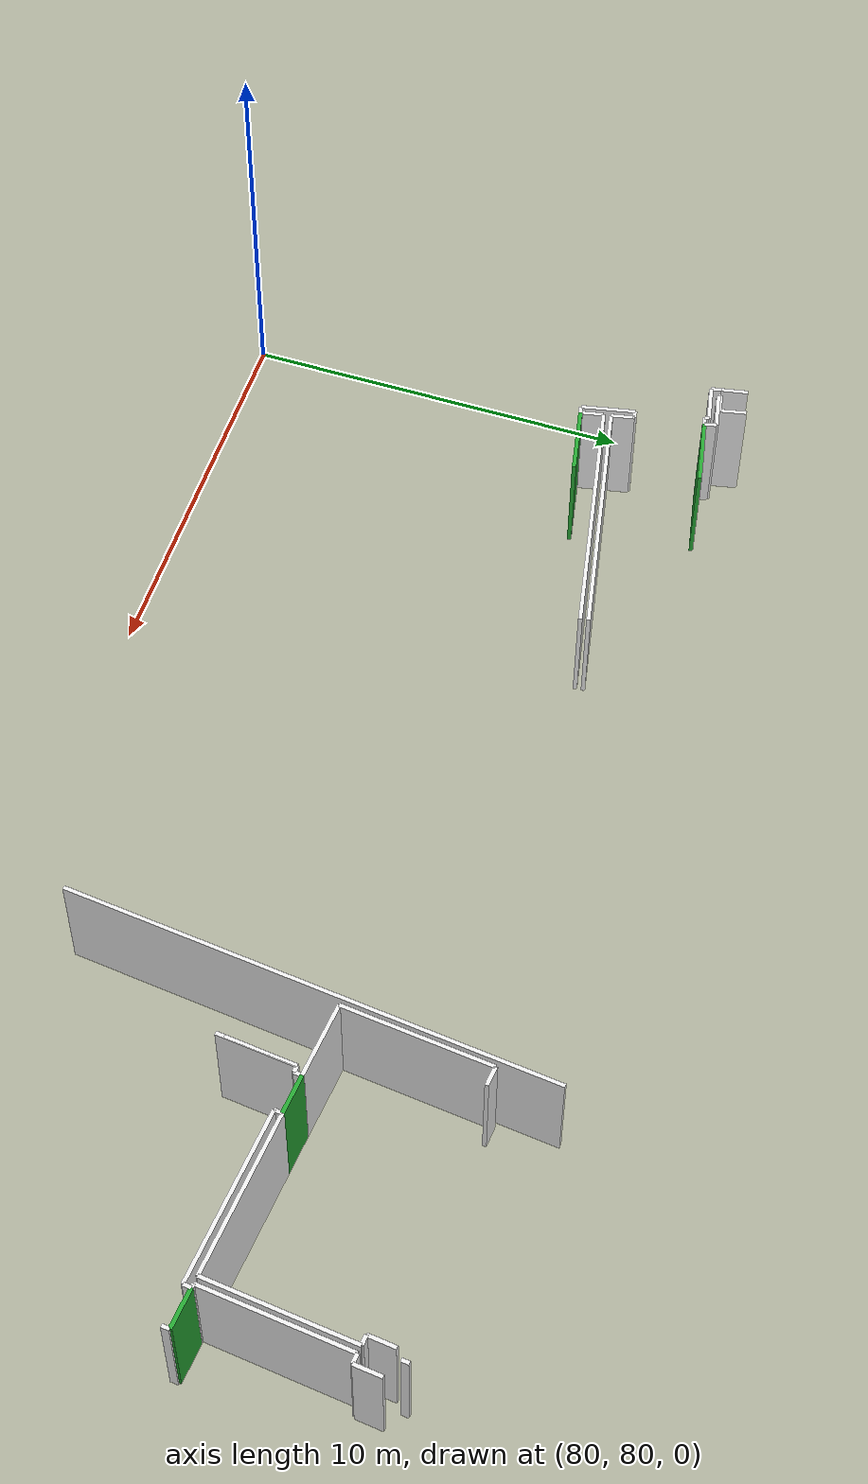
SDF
<sdf version="1.6">
 <world name="default">
  <model name="wall_102.4_88.9_1.5">
   <static>true</static>
   <pose>102.38000000000466 88.94000000017695 1.5 0 0 -0.09966865258337218</pose>
   <link name="link">
    <visual name="visual">
     <geometry><box><size>1.004987562121356 0.1 3</size></box></geometry>
     <material>
      <script><uri>file://media/materials/scripts/gazebo.material</uri><name>Gazebo/Green</name></script>
     </material>
    </visual>
    <collision name="collision"><geometry><box><size>1.004987562121356 0.1 3</size></box></geometry></collision>
   </link>
  </model>
  <model name="wall_107.8_88.4_1.5">
   <static>true</static>
   <pose>107.78999999997905 88.4000000001397 1.5 0 0 -0.09966865258337218</pose>
   <link name="link">
    <visual name="visual">
     <geometry><box><size>1.004987562121356 0.1 3</size></box></geometry>
     <material>
      <script><uri>file://media/materials/scripts/gazebo.material</uri><name>Gazebo/Green</name></script>
     </material>
    </visual>
    <collision name="collision"><geometry><box><size>1.004987562121356 0.1 3</size></box></geometry></collision>
   </link>
  </model>
  <model name="wall_82.0_92.7_1.5">
   <static>true</static>
   <pose>82.00000000011642 92.71500000008382 1.5 0 0 0.19630266413472733</pose>
   <link name="link">
    <visual name="visual">
     <geometry><box><size>1.7944637084425918 0.1 3</size></box></geometry>
     <material>
      <script><uri>file://media/materials/scripts/gazebo.material</uri><name>Gazebo/Green</name></script>
     </material>
    </visual>
    <collision name="collision"><geometry><box><size>1.7944637084425918 0.1 3</size></box></geometry></collision>
   </link>
  </model>
  <model name="wall_82.6_89.6_1.5">
   <static>true</static>
   <pose>82.625 89.59499999997206 1.5 0 0 0.195221650279591</pose>
   <link name="link">
    <visual name="visual">
     <geometry><box><size>1.804272706696837 0.1 3</size></box></geometry>
     <material>
      <script><uri>file://media/materials/scripts/gazebo.material</uri><name>Gazebo/Green</name></script>
     </material>
    </visual>
    <collision name="collision"><geometry><box><size>1.804272706696837 0.1 3</size></box></geometry></collision>
   </link>
  </model>
  <model name="wall_104.9_88.7_1.5">
   <static>true</static>
   <pose>104.94000000000233 88.68500000005588 1.5 0 0 -0.09918799887508435</pose>
   <link name="link">
    <visual name="visual">
     <geometry><box><size>4.1403502267421555 0.1 3</size></box></geometry>
     <material>
      <script><uri>file://media/materials/scripts/gazebo.material</uri><name>Gazebo/White</name></script>
     </material>
    </visual>
    <collision name="collision"><geometry><box><size>4.1403502267421555 0.1 3</size></box></geometry></collision>
   </link>
  </model>
  <model name="wall_107.2_90.4_1.5">
   <static>true</static>
   <pose>107.19000000000233 90.36499999999069 1.5 0 0 1.4703398593399408</pose>
   <link name="link">
    <visual name="visual">
     <geometry><box><size>3.78910279619648 0.1 3</size></box></geometry>
     <material>
      <script><uri>file://media/materials/scripts/gazebo.material</uri><name>Gazebo/White</name></script>
     </material>
    </visual>
    <collision name="collision"><geometry><box><size>3.78910279619648 0.1 3</size></box></geometry></collision>
   </link>
  </model>
  <model name="wall_107.3_92.3_1.5">
   <static>true</static>
   <pose>107.25500000000466 92.26000000000931 1.5 0 0 3.061762667803524</pose>
   <link name="link">
    <visual name="visual">
     <geometry><box><size>0.25079872408117443 0.1 3</size></box></geometry>
     <material>
      <script><uri>file://media/materials/scripts/gazebo.material</uri><name>Gazebo/White</name></script>
     </material>
    </visual>
    <collision name="collision"><geometry><box><size>0.25079872408117443 0.1 3</size></box></geometry></collision>
   </link>
  </model>
  <model name="wall_107.2_92.6_1.5">
   <static>true</static>
   <pose>107.16500000000815 92.62000000011176 1.5 0 0 1.4711276743202006</pose>
   <link name="link">
    <visual name="visual">
     <geometry><box><size>0.7034912936644975 0.1 3</size></box></geometry>
     <material>
      <script><uri>file://media/materials/scripts/gazebo.material</uri><name>Gazebo/White</name></script>
     </material>
    </visual>
    <collision name="collision"><geometry><box><size>0.7034912936644975 0.1 3</size></box></geometry></collision>
   </link>
  </model>
  <model name="wall_100.6_92.9_1.5">
   <static>true</static>
   <pose>100.59999999997672 92.93500000005588 1.5 0 0 3.0419240014674718</pose>
   <link name="link">
    <visual name="visual">
     <geometry><box><size>0.5024937810375105 0.1 3</size></box></geometry>
     <material>
      <script><uri>file://media/materials/scripts/gazebo.material</uri><name>Gazebo/White</name></script>
     </material>
    </visual>
    <collision name="collision"><geometry><box><size>0.5024937810375105 0.1 3</size></box></geometry></collision>
   </link>
  </model>
  <model name="wall_100.2_91.1_1.5">
   <static>true</static>
   <pose>100.15999999997439 91.07499999995343 1.5 0 0 -1.6712527942498523</pose>
   <link name="link">
    <visual name="visual">
     <geometry><box><size>3.78910279619648 0.1 3</size></box></geometry>
     <material>
      <script><uri>file://media/materials/scripts/gazebo.material</uri><name>Gazebo/White</name></script>
     </material>
    </visual>
    <collision name="collision"><geometry><box><size>3.78910279619648 0.1 3</size></box></geometry></collision>
   </link>
  </model>
  <model name="wall_100.9_89.1_1.5">
   <static>true</static>
   <pose>100.92499999998836 89.09000000008382 1.5 0 0 -0.10433183097900064</pose>
   <link name="link">
    <visual name="visual">
     <geometry><box><size>1.9204426573091837 0.1 3</size></box></geometry>
     <material>
      <script><uri>file://media/materials/scripts/gazebo.material</uri><name>Gazebo/White</name></script>
     </material>
    </visual>
    <collision name="collision"><geometry><box><size>1.9204426573091837 0.1 3</size></box></geometry></collision>
   </link>
  </model>
  <model name="wall_107.9_92.6_1.5">
   <static>true</static>
   <pose>107.85500000001048 92.55000000004657 1.5 0 0 -1.670464979335457</pose>
   <link name="link">
    <visual name="visual">
     <geometry><box><size>0.7034912932011471 0.1 3</size></box></geometry>
     <material>
      <script><uri>file://media/materials/scripts/gazebo.material</uri><name>Gazebo/White</name></script>
     </material>
    </visual>
    <collision name="collision"><geometry><box><size>0.7034912932011471 0.1 3</size></box></geometry></collision>
   </link>
  </model>
  <model name="wall_107.7_92.2_1.5">
   <static>true</static>
   <pose>107.69500000000698 92.21500000008382 1.5 0 0 3.0221637283793843</pose>
   <link name="link">
    <visual name="visual">
     <geometry><box><size>0.2517935662158716 0.1 3</size></box></geometry>
     <material>
      <script><uri>file://media/materials/scripts/gazebo.material</uri><name>Gazebo/White</name></script>
     </material>
    </visual>
    <collision name="collision"><geometry><box><size>0.2517935662158716 0.1 3</size></box></geometry></collision>
   </link>
  </model>
  <model name="wall_107.4_90.3_1.5">
   <static>true</static>
   <pose>107.38000000000466 90.34499999997206 1.5 0 0 -1.6712527942498523</pose>
   <link name="link">
    <visual name="visual">
     <geometry><box><size>3.78910279619648 0.1 3</size></box></geometry>
     <material>
      <script><uri>file://media/materials/scripts/gazebo.material</uri><name>Gazebo/White</name></script>
     </material>
    </visual>
    <collision name="collision"><geometry><box><size>3.78910279619648 0.1 3</size></box></geometry></collision>
   </link>
  </model>
  <model name="wall_107.2_88.5_1.5">
   <static>true</static>
   <pose>107.23999999999069 88.4550000000745 1.5 0 0 -0.09966865030117082</pose>
   <link name="link">
    <visual name="visual">
     <geometry><box><size>0.10049875616580058 0.1 3</size></box></geometry>
     <material>
      <script><uri>file://media/materials/scripts/gazebo.material</uri><name>Gazebo/White</name></script>
     </material>
    </visual>
    <collision name="collision"><geometry><box><size>0.10049875616580058 0.1 3</size></box></geometry></collision>
   </link>
  </model>
  <model name="wall_101.6_87.9_1.5">
   <static>true</static>
   <pose>101.60000000000582 87.9199999999255 1.5 0 0 1.470015327728778</pose>
   <link name="link">
    <visual name="visual">
     <geometry><box><size>1.789077975082648 0.1 3</size></box></geometry>
     <material>
      <script><uri>file://media/materials/scripts/gazebo.material</uri><name>Gazebo/White</name></script>
     </material>
    </visual>
    <collision name="collision"><geometry><box><size>1.789077975082648 0.1 3</size></box></geometry></collision>
   </link>
  </model>
  <model name="wall_101.8_88.8_1.5">
   <static>true</static>
   <pose>101.77499999999418 88.80000000004657 1.5 0 0 -0.11710874468606086</pose>
   <link name="link">
    <visual name="visual">
     <geometry><box><size>0.1711724276722267 0.1 3</size></box></geometry>
     <material>
      <script><uri>file://media/materials/scripts/gazebo.material</uri><name>Gazebo/White</name></script>
     </material>
    </visual>
    <collision name="collision"><geometry><box><size>0.1711724276722267 0.1 3</size></box></geometry></collision>
   </link>
  </model>
  <model name="wall_101.9_88.9_1.5">
   <static>true</static>
   <pose>101.86999999999534 88.89000000013039 1.5 0 0 1.4711276743037347</pose>
   <link name="link">
    <visual name="visual">
     <geometry><box><size>0.20099751260961132 0.1 3</size></box></geometry>
     <material>
      <script><uri>file://media/materials/scripts/gazebo.material</uri><name>Gazebo/White</name></script>
     </material>
    </visual>
    <collision name="collision"><geometry><box><size>0.20099751260961132 0.1 3</size></box></geometry></collision>
   </link>
  </model>
  <model name="wall_102.9_88.8_1.5">
   <static>true</static>
   <pose>102.86999999999534 88.79000000003725 1.5 0 0 -1.6704649792860586</pose>
   <link name="link">
    <visual name="visual">
     <geometry><box><size>0.20099751260961132 0.1 3</size></box></geometry>
     <material>
      <script><uri>file://media/materials/scripts/gazebo.material</uri><name>Gazebo/White</name></script>
     </material>
    </visual>
    <collision name="collision"><geometry><box><size>0.20099751260961132 0.1 3</size></box></geometry></collision>
   </link>
  </model>
  <model name="wall_105.1_88.5_1.5">
   <static>true</static>
   <pose>105.06500000000233 88.46999999997206 1.5 0 0 -0.099444135193827</pose>
   <link name="link">
    <visual name="visual">
     <geometry><box><size>4.431895756923703 0.1 3</size></box></geometry>
     <material>
      <script><uri>file://media/materials/scripts/gazebo.material</uri><name>Gazebo/White</name></script>
     </material>
    </visual>
    <collision name="collision"><geometry><box><size>4.431895756923703 0.1 3</size></box></geometry></collision>
   </link>
  </model>
  <model name="wall_107.3_88.4_1.5">
   <static>true</static>
   <pose>107.27999999999884 88.35000000009313 1.5 0 0 1.4711276745918913</pose>
   <link name="link">
    <visual name="visual">
     <geometry><box><size>0.20099751260381943 0.1 3</size></box></geometry>
     <material>
      <script><uri>file://media/materials/scripts/gazebo.material</uri><name>Gazebo/White</name></script>
     </material>
    </visual>
    <collision name="collision"><geometry><box><size>0.20099751260381943 0.1 3</size></box></geometry></collision>
   </link>
  </model>
  <model name="wall_108.3_88.2_1.5">
   <static>true</static>
   <pose>108.27999999999884 88.25 1.5 0 0 -1.6704649789979018</pose>
   <link name="link">
    <visual name="visual">
     <geometry><box><size>0.20099751260381943 0.1 3</size></box></geometry>
     <material>
      <script><uri>file://media/materials/scripts/gazebo.material</uri><name>Gazebo/White</name></script>
     </material>
    </visual>
    <collision name="collision"><geometry><box><size>0.20099751260381943 0.1 3</size></box></geometry></collision>
   </link>
  </model>
  <model name="wall_80.5_93.1_1.5">
   <static>true</static>
   <pose>80.48999999999069 93.13000000012107 1.5 0 0 -1.3677511095704145</pose>
   <link name="link">
    <visual name="visual">
     <geometry><box><size>0.6942621984754026 0.1 3</size></box></geometry>
     <material>
      <script><uri>file://media/materials/scripts/gazebo.material</uri><name>Gazebo/White</name></script>
     </material>
    </visual>
    <collision name="collision"><geometry><box><size>0.6942621984754026 0.1 3</size></box></geometry></collision>
   </link>
  </model>
  <model name="wall_80.3_92.7_1.5">
   <static>true</static>
   <pose>80.31500000000233 92.73999999999069 1.5 0 0 -2.9402755450289626</pose>
   <link name="link">
    <visual name="visual">
     <geometry><box><size>0.5000999900114971 0.1 3</size></box></geometry>
     <material>
      <script><uri>file://media/materials/scripts/gazebo.material</uri><name>Gazebo/White</name></script>
     </material>
    </visual>
    <collision name="collision"><geometry><box><size>0.5000999900114971 0.1 3</size></box></geometry></collision>
   </link>
  </model>
  <model name="wall_80.1_92.7_1.5">
   <static>true</static>
   <pose>80.07500000001164 92.66500000003725 1.5 0 0 -1.3734007660495133</pose>
   <link name="link">
    <visual name="visual">
     <geometry><box><size>0.05099019495510694 0.1 3</size></box></geometry>
     <material>
      <script><uri>file://media/materials/scripts/gazebo.material</uri><name>Gazebo/White</name></script>
     </material>
    </visual>
    <collision name="collision"><geometry><box><size>0.05099019495510694 0.1 3</size></box></geometry></collision>
   </link>
  </model>
  <model name="wall_80.6_92.7_1.5">
   <static>true</static>
   <pose>80.57000000000698 92.73999999999069 1.5 0 0 0.20131710810466522</pose>
   <link name="link">
    <visual name="visual">
     <geometry><box><size>1.0001999799298806 0.1 3</size></box></geometry>
     <material>
      <script><uri>file://media/materials/scripts/gazebo.material</uri><name>Gazebo/White</name></script>
     </material>
    </visual>
    <collision name="collision"><geometry><box><size>1.0001999799298806 0.1 3</size></box></geometry></collision>
   </link>
  </model>
  <model name="wall_81.1_92.7_1.5">
   <static>true</static>
   <pose>81.08999999999651 92.68999999994412 1.5 0 0 -1.373400766833078</pose>
   <link name="link">
    <visual name="visual">
     <geometry><box><size>0.3059411706324631 0.1 3</size></box></geometry>
     <material>
      <script><uri>file://media/materials/scripts/gazebo.material</uri><name>Gazebo/White</name></script>
     </material>
    </visual>
    <collision name="collision"><geometry><box><size>0.3059411706324631 0.1 3</size></box></geometry></collision>
   </link>
  </model>
  <model name="wall_81.5_90.5_1.5">
   <static>true</static>
   <pose>81.52999999999884 90.48499999986961 1.5 0 0 -1.3701434493385232</pose>
   <link name="link">
    <visual name="visual">
     <geometry><box><size>0.6020797288042661 0.1 3</size></box></geometry>
     <material>
      <script><uri>file://media/materials/scripts/gazebo.material</uri><name>Gazebo/White</name></script>
     </material>
    </visual>
    <collision name="collision"><geometry><box><size>0.6020797288042661 0.1 3</size></box></geometry></collision>
   </link>
  </model>
  <model name="wall_84.8_90.8_1.5">
   <static>true</static>
   <pose>84.80500000002212 90.8300000000745 1.5 0 0 0.19649816258288277</pose>
   <link name="link">
    <visual name="visual">
     <geometry><box><size>6.556165037625101 0.1 3</size></box></geometry>
     <material>
      <script><uri>file://media/materials/scripts/gazebo.material</uri><name>Gazebo/White</name></script>
     </material>
    </visual>
    <collision name="collision"><geometry><box><size>6.556165037625101 0.1 3</size></box></geometry></collision>
   </link>
  </model>
  <model name="wall_79.8_93.0_1.5">
   <static>true</static>
   <pose>79.80499999999302 92.98999999999069 1.5 0 0 -1.3818991459561358</pose>
   <link name="link">
    <visual name="visual">
     <geometry><box><size>0.6923149573923696 0.1 3</size></box></geometry>
     <material>
      <script><uri>file://media/materials/scripts/gazebo.material</uri><name>Gazebo/White</name></script>
     </material>
    </visual>
    <collision name="collision"><geometry><box><size>0.6923149573923696 0.1 3</size></box></geometry></collision>
   </link>
  </model>
  <model name="wall_79.9_92.5_1.5">
   <static>true</static>
   <pose>79.89499999998952 92.52499999990687 1.5 0 0 -1.373400766989791</pose>
   <link name="link">
    <visual name="visual">
     <geometry><box><size>0.25495097567735614 0.1 3</size></box></geometry>
     <material>
      <script><uri>file://media/materials/scripts/gazebo.material</uri><name>Gazebo/White</name></script>
     </material>
    </visual>
    <collision name="collision"><geometry><box><size>0.25495097567735614 0.1 3</size></box></geometry></collision>
   </link>
  </model>
  <model name="wall_80.4_92.5_1.5">
   <static>true</static>
   <pose>80.41000000000349 92.5 1.5 0 0 0.20131710854919393</pose>
   <link name="link">
    <visual name="visual">
     <geometry><box><size>1.0001999800800263 0.1 3</size></box></geometry>
     <material>
      <script><uri>file://media/materials/scripts/gazebo.material</uri><name>Gazebo/White</name></script>
     </material>
    </visual>
    <collision name="collision"><geometry><box><size>1.0001999800800263 0.1 3</size></box></geometry></collision>
   </link>
  </model>
  <model name="wall_80.9_92.6_1.5">
   <static>true</static>
   <pose>80.91000000000349 92.55000000004657 1.5 0 0 -1.3734007675047049</pose>
   <link name="link">
    <visual name="visual">
     <geometry><box><size>0.10198039035541688 0.1 3</size></box></geometry>
     <material>
      <script><uri>file://media/materials/scripts/gazebo.material</uri><name>Gazebo/White</name></script>
     </material>
    </visual>
    <collision name="collision"><geometry><box><size>0.10198039035541688 0.1 3</size></box></geometry></collision>
   </link>
  </model>
  <model name="wall_81.0_92.5_1.5">
   <static>true</static>
   <pose>81.01999999998952 92.52000000001863 1.5 0 0 0.19739556001778746</pose>
   <link name="link">
    <visual name="visual">
     <geometry><box><size>0.20396078056243275 0.1 3</size></box></geometry>
     <material>
      <script><uri>file://media/materials/scripts/gazebo.material</uri><name>Gazebo/White</name></script>
     </material>
    </visual>
    <collision name="collision"><geometry><box><size>0.20396078056243275 0.1 3</size></box></geometry></collision>
   </link>
  </model>
  <model name="wall_81.4_90.8_1.5">
   <static>true</static>
   <pose>81.36999999999534 90.76000000000931 1.5 0 0 -2.944197095754793</pose>
   <link name="link">
    <visual name="visual">
     <geometry><box><size>0.20396078041403173 0.1 3</size></box></geometry>
     <material>
      <script><uri>file://media/materials/scripts/gazebo.material</uri><name>Gazebo/White</name></script>
     </material>
    </visual>
    <collision name="collision"><geometry><box><size>0.20396078041403173 0.1 3</size></box></geometry></collision>
   </link>
  </model>
  <model name="wall_81.4_90.1_1.5">
   <static>true</static>
   <pose>81.41000000000349 90.06000000005588 1.5 0 0 -1.3677511096114738</pose>
   <link name="link">
    <visual name="visual">
     <geometry><box><size>1.3885243969390675 0.1 3</size></box></geometry>
     <material>
      <script><uri>file://media/materials/scripts/gazebo.material</uri><name>Gazebo/White</name></script>
     </material>
    </visual>
    <collision name="collision"><geometry><box><size>1.3885243969390675 0.1 3</size></box></geometry></collision>
   </link>
  </model>
  <model name="wall_81.6_89.4_1.5">
   <static>true</static>
   <pose>81.64499999998952 89.39999999990687 1.5 0 0 0.20749622662047904</pose>
   <link name="link">
    <visual name="visual">
     <geometry><box><size>0.19416487839942884 0.1 3</size></box></geometry>
     <material>
      <script><uri>file://media/materials/scripts/gazebo.material</uri><name>Gazebo/White</name></script>
     </material>
    </visual>
    <collision name="collision"><geometry><box><size>0.19416487839942884 0.1 3</size></box></geometry></collision>
   </link>
  </model>
  <model name="wall_107.4_93.2_1.5">
   <static>true</static>
   <pose>107.42999999999302 93.2249999998603 1.5 0 0 1.4659193879370842</pose>
   <link name="link">
    <visual name="visual">
     <geometry><box><size>0.19104973169180559 0.1 3</size></box></geometry>
     <material>
      <script><uri>file://media/materials/scripts/gazebo.material</uri><name>Gazebo/White</name></script>
     </material>
    </visual>
    <collision name="collision"><geometry><box><size>0.19104973169180559 0.1 3</size></box></geometry></collision>
   </link>
  </model>
  <model name="wall_99.7_88.4_1.5">
   <static>true</static>
   <pose>99.69000000000233 88.375 1.5 0 0 -1.6724688239947545</pose>
   <link name="link">
    <visual name="visual">
     <geometry><box><size>12.414108908448563 0.1 3</size></box></geometry>
     <material>
      <script><uri>file://media/materials/scripts/gazebo.material</uri><name>Gazebo/White</name></script>
     </material>
    </visual>
    <collision name="collision"><geometry><box><size>12.414108908448563 0.1 3</size></box></geometry></collision>
   </link>
  </model>
  <model name="wall_84.8_90.6_1.5">
   <static>true</static>
   <pose>84.83499999999185 90.63500000000931 1.5 0 0 -2.946590865346617</pose>
   <link name="link">
    <visual name="visual">
     <geometry><box><size>6.554220014613294 0.1 3</size></box></geometry>
     <material>
      <script><uri>file://media/materials/scripts/gazebo.material</uri><name>Gazebo/White</name></script>
     </material>
    </visual>
    <collision name="collision"><geometry><box><size>6.554220014613294 0.1 3</size></box></geometry></collision>
   </link>
  </model>
  <model name="wall_81.7_89.7_1.5">
   <static>true</static>
   <pose>81.67999999999302 89.70999999996275 1.5 0 0 -1.3667783472355337</pose>
   <link name="link">
    <visual name="visual">
     <geometry><box><size>0.592283715870451 0.1 3</size></box></geometry>
     <material>
      <script><uri>file://media/materials/scripts/gazebo.material</uri><name>Gazebo/White</name></script>
     </material>
    </visual>
    <collision name="collision"><geometry><box><size>0.592283715870451 0.1 3</size></box></geometry></collision>
   </link>
  </model>
  <model name="wall_101.6_87.8_1.5">
   <static>true</static>
   <pose>101.58999999999651 87.81499999994412 1.5 0 0 1.4706301619123556</pose>
   <link name="link">
    <visual name="visual">
     <geometry><box><size>2.000025000067313 0.1 3</size></box></geometry>
     <material>
      <script><uri>file://media/materials/scripts/gazebo.material</uri><name>Gazebo/White</name></script>
     </material>
    </visual>
    <collision name="collision"><geometry><box><size>2.000025000067313 0.1 3</size></box></geometry></collision>
   </link>
  </model>
 </world>
</sdf>
